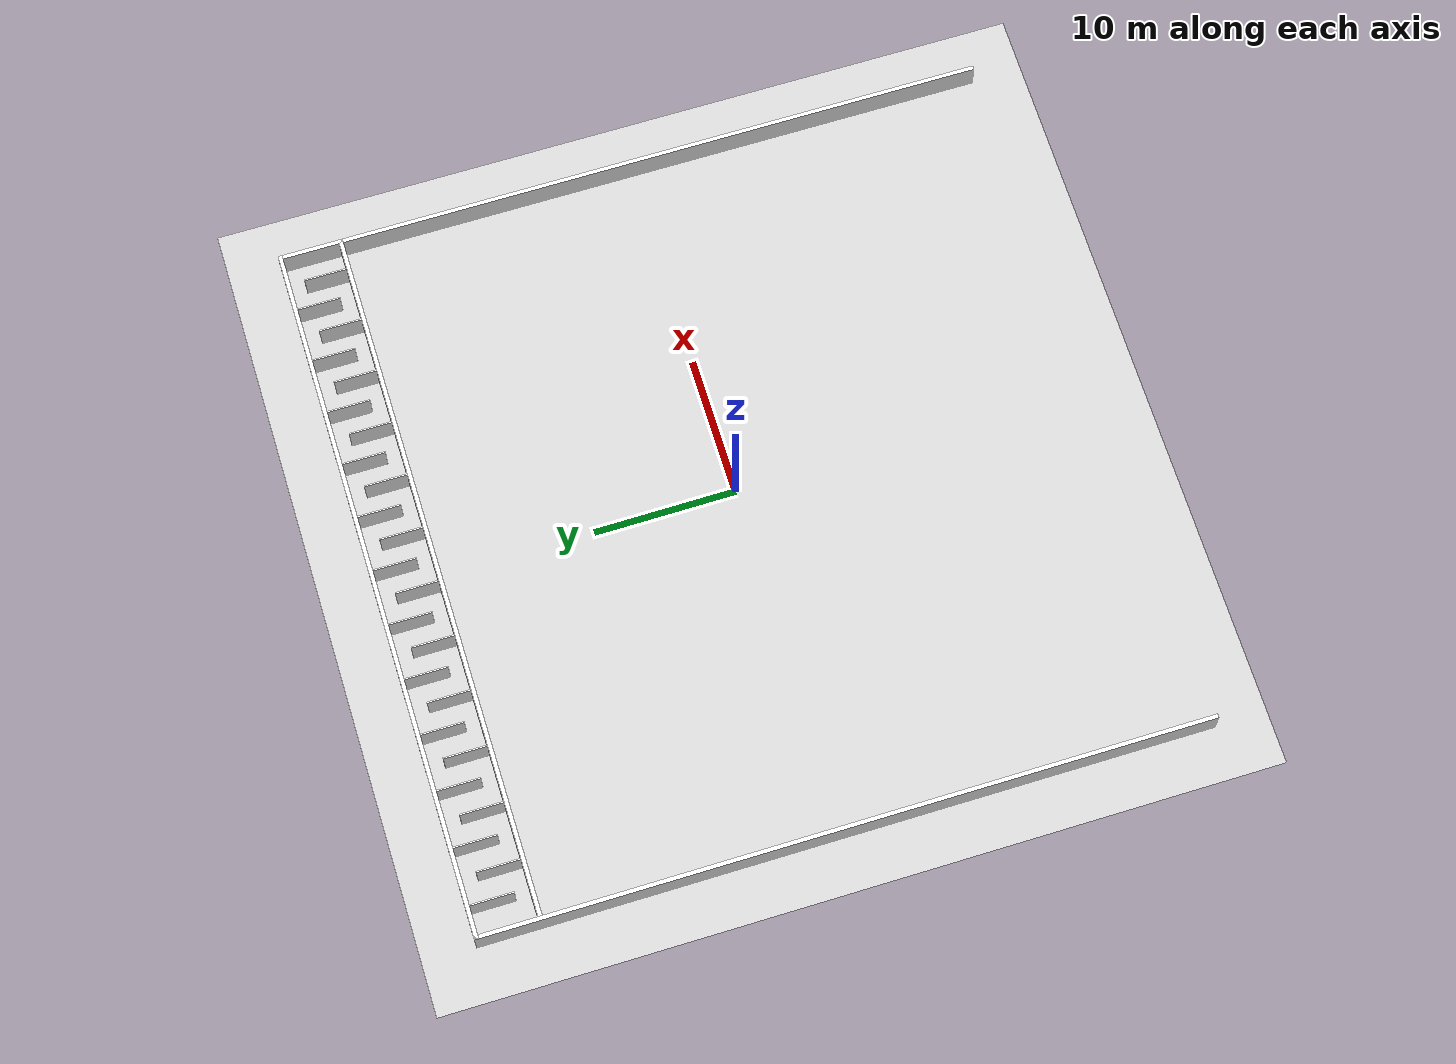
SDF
<sdf version="1.6">
 <world name="default">
  <light name="sun" type="directional">
   <pose>0 0 10 0 -0 0</pose>
   <diffuse>0.8 0.8 0.8 1</diffuse>
   <specular>0.2 0.2 0.2 1</specular>
   <attenuation>
    <range>1000</range>
    <constant>0.9</constant>
    <linear>0.01</linear>
    <quadratic>0.001</quadratic>
   </attenuation>
   <direction>-0.5 0.1 -0.9</direction>
  </light>
  <model name="ground_plane">
   <static>1</static>
   <link name="link">
    <collision name="collision">
     <geometry><plane><normal>0 0 1</normal><size>100 100</size></plane></geometry>
     <surface>
      <contact><collide_bitmask>65535</collide_bitmask></contact>
      <friction><ode><mu>100</mu><mu2>50</mu2></ode></friction>
     </surface>
    </collision>
    <visual name="visual">
     <cast_shadows>0</cast_shadows>
     <geometry><plane><normal>0 0 1</normal><size>100 100</size></plane></geometry>
     <material>
      <script><uri>file://media/materials/scripts/gazebo.material</uri><name>Gazebo/Grey</name></script>
     </material>
    </visual>
   </link>
  </model>
  <model name="simple_box1">
   <static>1</static>
   <pose>0 25.15 1 0 -0 0</pose>
   <link name="link">
    <inertial><mass>1</mass></inertial>
    <collision name="collision"><geometry><box><size>50.6 0.3 2</size></box></geometry></collision>
    <visual name="visual">
     <geometry><box><size>50.6 0.3 2</size></box></geometry>
     <material>
      <script><uri>file://media/materials/scripts/gazebo.material</uri><name>Gazebo/White</name></script>
     </material>
    </visual>
   </link>
  </model>
  <model name="simple_box2">
   <static>1</static>
   <pose>0 20.85 1 0 -0 0</pose>
   <link name="link">
    <inertial><mass>1</mass></inertial>
    <collision name="collision"><geometry><box><size>50.6 0.3 2</size></box></geometry></collision>
    <visual name="visual">
     <geometry><box><size>50.6 0.3 2</size></box></geometry>
     <material>
      <script><uri>file://media/materials/scripts/gazebo.material</uri><name>Gazebo/White</name></script>
     </material>
    </visual>
   </link>
  </model>
  <model name="simple_box3">
   <static>1</static>
   <pose>25.15 0 1 0 -0 1.5708</pose>
   <link name="link">
    <inertial><mass>1</mass></inertial>
    <collision name="collision"><geometry><box><size>50.6 0.3 2</size></box></geometry></collision>
    <visual name="visual">
     <geometry><box><size>50.6 0.3 2</size></box></geometry>
     <material>
      <script><uri>file://media/materials/scripts/gazebo.material</uri><name>Gazebo/White</name></script>
     </material>
    </visual>
   </link>
  </model>
  <model name="simple_box4">
   <static>1</static>
   <pose>-25.15 0 1 0 -0 1.5708</pose>
   <link name="link">
    <inertial><mass>1</mass></inertial>
    <collision name="collision"><geometry><box><size>50.6 0.3 2</size></box></geometry></collision>
    <visual name="visual">
     <geometry><box><size>50.6 0.3 2</size></box></geometry>
     <material>
      <script><uri>file://media/materials/scripts/gazebo.material</uri><name>Gazebo/White</name></script>
     </material>
    </visual>
   </link>
  </model>
  <model name="wall0">
   <static>1</static>
   <pose>-23 23.5 1 0 -0 1.5708</pose>
   <link name="link">
    <inertial><mass>1</mass></inertial>
    <collision name="collision"><geometry><box><size>3 0.1 2</size></box></geometry></collision>
    <visual name="visual">
     <geometry><box><size>3 0.1 2</size></box></geometry>
     <material>
      <script><uri>file://media/materials/scripts/gazebo.material</uri><name>Gazebo/White</name></script>
     </material>
    </visual>
   </link>
  </model>
  <model name="wall1">
   <static>1</static>
   <pose>-21 22.5 1 0 -0 1.5708</pose>
   <link name="link">
    <inertial><mass>1</mass></inertial>
    <collision name="collision"><geometry><box><size>3 0.1 2</size></box></geometry></collision>
    <visual name="visual">
     <geometry><box><size>3 0.1 2</size></box></geometry>
     <material>
      <script><uri>file://media/materials/scripts/gazebo.material</uri><name>Gazebo/White</name></script>
     </material>
    </visual>
   </link>
  </model>
  <model name="wall2">
   <static>1</static>
   <pose>-19 23.5 1 0 -0 1.5708</pose>
   <link name="link">
    <inertial><mass>1</mass></inertial>
    <collision name="collision"><geometry><box><size>3 0.1 2</size></box></geometry></collision>
    <visual name="visual">
     <geometry><box><size>3 0.1 2</size></box></geometry>
     <material>
      <script><uri>file://media/materials/scripts/gazebo.material</uri><name>Gazebo/White</name></script>
     </material>
    </visual>
   </link>
  </model>
  <model name="wall3">
   <static>1</static>
   <pose>-17 22.5 1 0 -0 1.5708</pose>
   <link name="link">
    <inertial><mass>1</mass></inertial>
    <collision name="collision"><geometry><box><size>3 0.1 2</size></box></geometry></collision>
    <visual name="visual">
     <geometry><box><size>3 0.1 2</size></box></geometry>
     <material>
      <script><uri>file://media/materials/scripts/gazebo.material</uri><name>Gazebo/White</name></script>
     </material>
    </visual>
   </link>
  </model>
  <model name="wall4">
   <static>1</static>
   <pose>-15 23.5 1 0 -0 1.5708</pose>
   <link name="link">
    <inertial><mass>1</mass></inertial>
    <collision name="collision"><geometry><box><size>3 0.1 2</size></box></geometry></collision>
    <visual name="visual">
     <geometry><box><size>3 0.1 2</size></box></geometry>
     <material>
      <script><uri>file://media/materials/scripts/gazebo.material</uri><name>Gazebo/White</name></script>
     </material>
    </visual>
   </link>
  </model>
  <model name="wall5">
   <static>1</static>
   <pose>-13 22.5 1 0 -0 1.5708</pose>
   <link name="link">
    <inertial><mass>1</mass></inertial>
    <collision name="collision"><geometry><box><size>3 0.1 2</size></box></geometry></collision>
    <visual name="visual">
     <geometry><box><size>3 0.1 2</size></box></geometry>
     <material>
      <script><uri>file://media/materials/scripts/gazebo.material</uri><name>Gazebo/White</name></script>
     </material>
    </visual>
   </link>
  </model>
  <model name="wall6">
   <static>1</static>
   <pose>-11 23.5 1 0 -0 1.5708</pose>
   <link name="link">
    <inertial><mass>1</mass></inertial>
    <collision name="collision"><geometry><box><size>3 0.1 2</size></box></geometry></collision>
    <visual name="visual">
     <geometry><box><size>3 0.1 2</size></box></geometry>
     <material>
      <script><uri>file://media/materials/scripts/gazebo.material</uri><name>Gazebo/White</name></script>
     </material>
    </visual>
   </link>
  </model>
  <model name="wall7">
   <static>1</static>
   <pose>-9 22.5 1 0 -0 1.5708</pose>
   <link name="link">
    <inertial><mass>1</mass></inertial>
    <collision name="collision"><geometry><box><size>3 0.1 2</size></box></geometry></collision>
    <visual name="visual">
     <geometry><box><size>3 0.1 2</size></box></geometry>
     <material>
      <script><uri>file://media/materials/scripts/gazebo.material</uri><name>Gazebo/White</name></script>
     </material>
    </visual>
   </link>
  </model>
  <model name="wall8">
   <static>1</static>
   <pose>-7 23.5 1 0 -0 1.5708</pose>
   <link name="link">
    <inertial><mass>1</mass></inertial>
    <collision name="collision"><geometry><box><size>3 0.1 2</size></box></geometry></collision>
    <visual name="visual">
     <geometry><box><size>3 0.1 2</size></box></geometry>
     <material>
      <script><uri>file://media/materials/scripts/gazebo.material</uri><name>Gazebo/White</name></script>
     </material>
    </visual>
   </link>
  </model>
  <model name="wall9">
   <static>1</static>
   <pose>-5 22.5 1 0 -0 1.5708</pose>
   <link name="link">
    <inertial><mass>1</mass></inertial>
    <collision name="collision"><geometry><box><size>3 0.1 2</size></box></geometry></collision>
    <visual name="visual">
     <geometry><box><size>3 0.1 2</size></box></geometry>
     <material>
      <script><uri>file://media/materials/scripts/gazebo.material</uri><name>Gazebo/White</name></script>
     </material>
    </visual>
   </link>
  </model>
  <model name="wall10">
   <static>1</static>
   <pose>-3 23.5 1 0 -0 1.5708</pose>
   <link name="link">
    <inertial><mass>1</mass></inertial>
    <collision name="collision"><geometry><box><size>3 0.1 2</size></box></geometry></collision>
    <visual name="visual">
     <geometry><box><size>3 0.1 2</size></box></geometry>
     <material>
      <script><uri>file://media/materials/scripts/gazebo.material</uri><name>Gazebo/White</name></script>
     </material>
    </visual>
   </link>
  </model>
  <model name="wall11">
   <static>1</static>
   <pose>-1 22.5 1 0 -0 1.5708</pose>
   <link name="link">
    <inertial><mass>1</mass></inertial>
    <collision name="collision"><geometry><box><size>3 0.1 2</size></box></geometry></collision>
    <visual name="visual">
     <geometry><box><size>3 0.1 2</size></box></geometry>
     <material>
      <script><uri>file://media/materials/scripts/gazebo.material</uri><name>Gazebo/White</name></script>
     </material>
    </visual>
   </link>
  </model>
  <model name="wall12">
   <static>1</static>
   <pose>1 23.5 1 0 -0 1.5708</pose>
   <link name="link">
    <inertial><mass>1</mass></inertial>
    <collision name="collision"><geometry><box><size>3 0.1 2</size></box></geometry></collision>
    <visual name="visual">
     <geometry><box><size>3 0.1 2</size></box></geometry>
     <material>
      <script><uri>file://media/materials/scripts/gazebo.material</uri><name>Gazebo/White</name></script>
     </material>
    </visual>
   </link>
  </model>
  <model name="wall13">
   <static>1</static>
   <pose>3 22.5 1 0 -0 1.5708</pose>
   <link name="link">
    <inertial><mass>1</mass></inertial>
    <collision name="collision"><geometry><box><size>3 0.1 2</size></box></geometry></collision>
    <visual name="visual">
     <geometry><box><size>3 0.1 2</size></box></geometry>
     <material>
      <script><uri>file://media/materials/scripts/gazebo.material</uri><name>Gazebo/White</name></script>
     </material>
    </visual>
   </link>
  </model>
  <model name="wall14">
   <static>1</static>
   <pose>5 23.5 1 0 -0 1.5708</pose>
   <link name="link">
    <inertial><mass>1</mass></inertial>
    <collision name="collision"><geometry><box><size>3 0.1 2</size></box></geometry></collision>
    <visual name="visual">
     <geometry><box><size>3 0.1 2</size></box></geometry>
     <material>
      <script><uri>file://media/materials/scripts/gazebo.material</uri><name>Gazebo/White</name></script>
     </material>
    </visual>
   </link>
  </model>
  <model name="wall15">
   <static>1</static>
   <pose>7 22.5 1 0 -0 1.5708</pose>
   <link name="link">
    <inertial><mass>1</mass></inertial>
    <collision name="collision"><geometry><box><size>3 0.1 2</size></box></geometry></collision>
    <visual name="visual">
     <geometry><box><size>3 0.1 2</size></box></geometry>
     <material>
      <script><uri>file://media/materials/scripts/gazebo.material</uri><name>Gazebo/White</name></script>
     </material>
    </visual>
   </link>
  </model>
  <model name="wall16">
   <static>1</static>
   <pose>9 23.5 1 0 -0 1.5708</pose>
   <link name="link">
    <inertial><mass>1</mass></inertial>
    <collision name="collision"><geometry><box><size>3 0.1 2</size></box></geometry></collision>
    <visual name="visual">
     <geometry><box><size>3 0.1 2</size></box></geometry>
     <material>
      <script><uri>file://media/materials/scripts/gazebo.material</uri><name>Gazebo/White</name></script>
     </material>
    </visual>
   </link>
  </model>
  <model name="wall17">
   <static>1</static>
   <pose>11 22.5 1 0 -0 1.5708</pose>
   <link name="link">
    <inertial><mass>1</mass></inertial>
    <collision name="collision"><geometry><box><size>3 0.1 2</size></box></geometry></collision>
    <visual name="visual">
     <geometry><box><size>3 0.1 2</size></box></geometry>
     <material>
      <script><uri>file://media/materials/scripts/gazebo.material</uri><name>Gazebo/White</name></script>
     </material>
    </visual>
   </link>
  </model>
  <model name="wall18">
   <static>1</static>
   <pose>13 23.5 1 0 -0 1.5708</pose>
   <link name="link">
    <inertial><mass>1</mass></inertial>
    <collision name="collision"><geometry><box><size>3 0.1 2</size></box></geometry></collision>
    <visual name="visual">
     <geometry><box><size>3 0.1 2</size></box></geometry>
     <material>
      <script><uri>file://media/materials/scripts/gazebo.material</uri><name>Gazebo/White</name></script>
     </material>
    </visual>
   </link>
  </model>
  <model name="wall19">
   <static>1</static>
   <pose>15 22.5 1 0 -0 1.5708</pose>
   <link name="link">
    <inertial><mass>1</mass></inertial>
    <collision name="collision"><geometry><box><size>3 0.1 2</size></box></geometry></collision>
    <visual name="visual">
     <geometry><box><size>3 0.1 2</size></box></geometry>
     <material>
      <script><uri>file://media/materials/scripts/gazebo.material</uri><name>Gazebo/White</name></script>
     </material>
    </visual>
   </link>
  </model>
  <model name="wall20">
   <static>1</static>
   <pose>17 23.5 1 0 -0 1.5708</pose>
   <link name="link">
    <inertial><mass>1</mass></inertial>
    <collision name="collision"><geometry><box><size>3 0.1 2</size></box></geometry></collision>
    <visual name="visual">
     <geometry><box><size>3 0.1 2</size></box></geometry>
     <material>
      <script><uri>file://media/materials/scripts/gazebo.material</uri><name>Gazebo/White</name></script>
     </material>
    </visual>
   </link>
  </model>
  <model name="wall21">
   <static>1</static>
   <pose>19 22.5 1 0 -0 1.5708</pose>
   <link name="link">
    <inertial><mass>1</mass></inertial>
    <collision name="collision"><geometry><box><size>3 0.1 2</size></box></geometry></collision>
    <visual name="visual">
     <geometry><box><size>3 0.1 2</size></box></geometry>
     <material>
      <script><uri>file://media/materials/scripts/gazebo.material</uri><name>Gazebo/White</name></script>
     </material>
    </visual>
   </link>
  </model>
  <model name="wall22">
   <static>1</static>
   <pose>21 23.5 1 0 -0 1.5708</pose>
   <link name="link">
    <inertial><mass>1</mass></inertial>
    <collision name="collision"><geometry><box><size>3 0.1 2</size></box></geometry></collision>
    <visual name="visual">
     <geometry><box><size>3 0.1 2</size></box></geometry>
     <material>
      <script><uri>file://media/materials/scripts/gazebo.material</uri><name>Gazebo/White</name></script>
     </material>
    </visual>
   </link>
  </model>
  <model name="wall23">
   <static>1</static>
   <pose>23 22.5 1 0 -0 1.5708</pose>
   <link name="link">
    <inertial><mass>1</mass></inertial>
    <collision name="collision"><geometry><box><size>3 0.1 2</size></box></geometry></collision>
    <visual name="visual">
     <geometry><box><size>3 0.1 2</size></box></geometry>
     <material>
      <script><uri>file://media/materials/scripts/gazebo.material</uri><name>Gazebo/White</name></script>
     </material>
    </visual>
   </link>
  </model>
  <gravity>0 0 -9.8</gravity>
  <magnetic_field>6e-06 2.3e-05 -4.2e-05</magnetic_field>
  <atmosphere type="adiabatic"/>
  <physics name="default_physics" default="0" type="ode">
   <max_step_size>0.001</max_step_size>
   <real_time_factor>1</real_time_factor>
   <real_time_update_rate>1000</real_time_update_rate>
  </physics>
  <scene><ambient>0.4 0.4 0.4 1</ambient><background>0.7 0.7 0.7 1</background><shadows>1</shadows></scene>
  <audio><device>default</device></audio>
  <spherical_coordinates>
   <surface_model>EARTH_WGS84</surface_model>
   <latitude_deg>0</latitude_deg>
   <longitude_deg>0</longitude_deg>
   <elevation>0</elevation>
   <heading_deg>0</heading_deg>
  </spherical_coordinates>
 </world>
</sdf>
